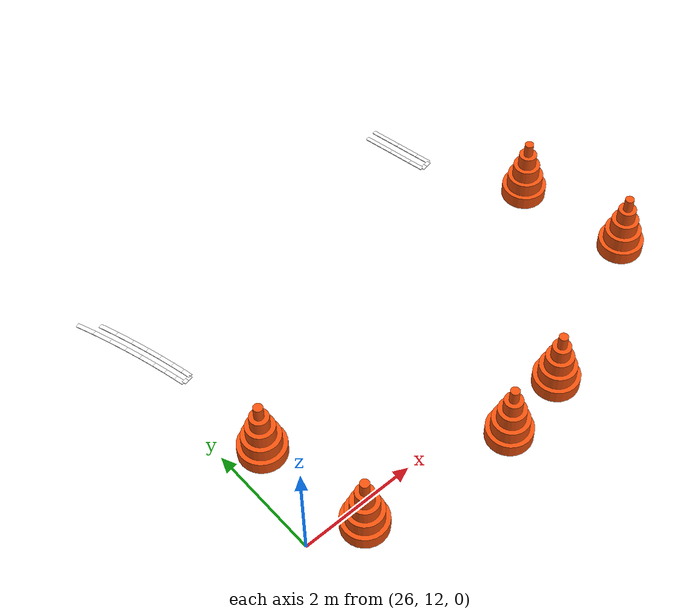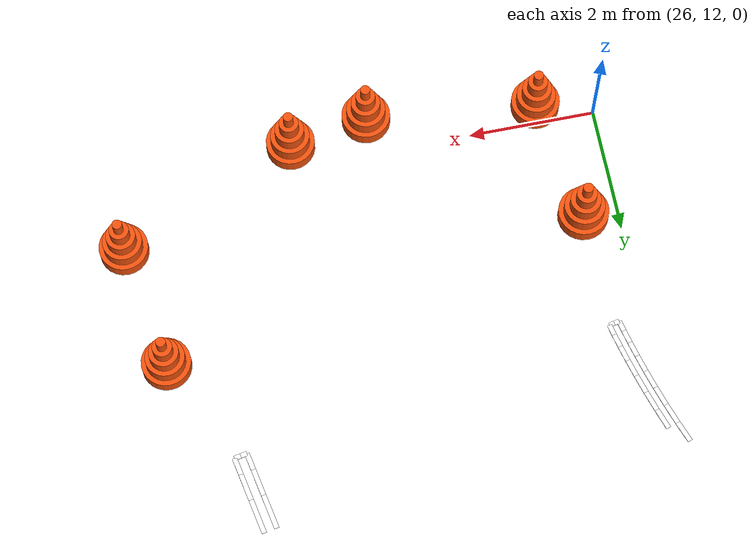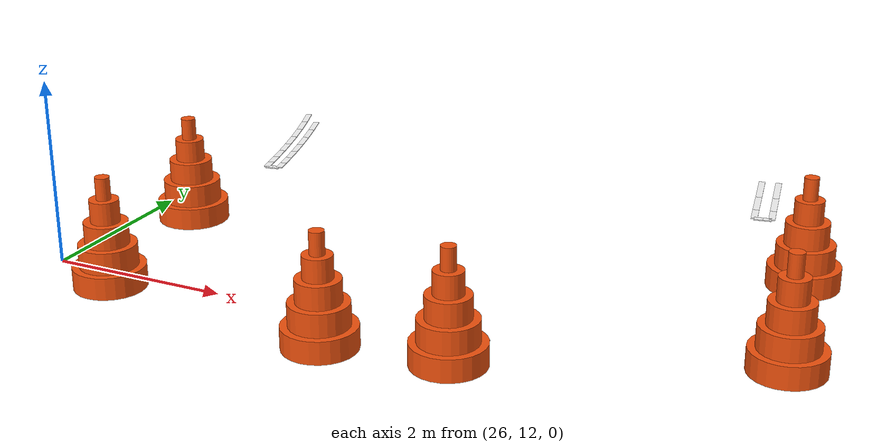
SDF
<sdf version="1.9">
 <world name="igvc_competition">
  <model name="Line_001_0000">
   <static>1</static>
   <pose>32.4409 16.4236 0.011 0 0 0.189157</pose>
   <link name="link">
    <visual name="visual">
     <geometry><box><size>0.1000 0.0762 0.012</size></box></geometry>
     <material>
      <ambient>0.98 0.98 0.98 1</ambient>
      <diffuse>0.98 0.98 0.98 1</diffuse>
      <specular>0.05 0.05 0.05 1</specular>
      <emissive>0.9 0.9 0.9 1</emissive>
     </material>
    </visual>
   </link>
  </model>
  <model name="Line_001_0001">
   <static>1</static>
   <pose>32.3661 16.5486 0.011 0 0 1.759736</pose>
   <link name="link">
    <visual name="visual">
     <geometry><box><size>0.2737 0.0762 0.012</size></box></geometry>
     <material>
      <ambient>0.98 0.98 0.98 1</ambient>
      <diffuse>0.98 0.98 0.98 1</diffuse>
      <specular>0.05 0.05 0.05 1</specular>
      <emissive>0.9 0.9 0.9 1</emissive>
     </material>
    </visual>
   </link>
  </model>
  <model name="Line_001_0002">
   <static>1</static>
   <pose>32.5391 16.4424 0.011 0 0 -2.952435</pose>
   <link name="link">
    <visual name="visual">
     <geometry><box><size>0.1000 0.0762 0.012</size></box></geometry>
     <material>
      <ambient>0.98 0.98 0.98 1</ambient>
      <diffuse>0.98 0.98 0.98 1</diffuse>
      <specular>0.05 0.05 0.05 1</specular>
      <emissive>0.9 0.9 0.9 1</emissive>
     </material>
    </visual>
   </link>
  </model>
  <model name="Line_001_0003">
   <static>1</static>
   <pose>32.5626 16.5859 0.011 0 0 1.759720</pose>
   <link name="link">
    <visual name="visual">
     <geometry><box><size>0.2732 0.0762 0.012</size></box></geometry>
     <material>
      <ambient>0.98 0.98 0.98 1</ambient>
      <diffuse>0.98 0.98 0.98 1</diffuse>
      <specular>0.05 0.05 0.05 1</specular>
      <emissive>0.9 0.9 0.9 1</emissive>
     </material>
    </visual>
   </link>
  </model>
  <model name="Line_001_0004">
   <static>1</static>
   <pose>32.3014 16.8928 0.011 0 0 1.754547</pose>
   <link name="link">
    <visual name="visual">
     <geometry><box><size>0.4269 0.0762 0.012</size></box></geometry>
     <material>
      <ambient>0.98 0.98 0.98 1</ambient>
      <diffuse>0.98 0.98 0.98 1</diffuse>
      <specular>0.05 0.05 0.05 1</specular>
      <emissive>0.9 0.9 0.9 1</emissive>
     </material>
    </visual>
   </link>
  </model>
  <model name="Line_001_0005">
   <static>1</static>
   <pose>32.4980 16.9298 0.011 0 0 1.754445</pose>
   <link name="link">
    <visual name="visual">
     <geometry><box><size>0.4266 0.0762 0.012</size></box></geometry>
     <material>
      <ambient>0.98 0.98 0.98 1</ambient>
      <diffuse>0.98 0.98 0.98 1</diffuse>
      <specular>0.05 0.05 0.05 1</specular>
      <emissive>0.9 0.9 0.9 1</emissive>
     </material>
    </visual>
   </link>
  </model>
  <model name="Line_001_0006">
   <static>1</static>
   <pose>32.2115 17.3725 0.011 0 0 1.757297</pose>
   <link name="link">
    <visual name="visual">
     <geometry><box><size>0.5490 0.0762 0.012</size></box></geometry>
     <material>
      <ambient>0.98 0.98 0.98 1</ambient>
      <diffuse>0.98 0.98 0.98 1</diffuse>
      <specular>0.05 0.05 0.05 1</specular>
      <emissive>0.9 0.9 0.9 1</emissive>
     </material>
    </visual>
   </link>
  </model>
  <model name="Line_001_0007">
   <static>1</static>
   <pose>32.4080 17.4097 0.011 0 0 1.757351</pose>
   <link name="link">
    <visual name="visual">
     <geometry><box><size>0.5499 0.0762 0.012</size></box></geometry>
     <material>
      <ambient>0.98 0.98 0.98 1</ambient>
      <diffuse>0.98 0.98 0.98 1</diffuse>
      <specular>0.05 0.05 0.05 1</specular>
      <emissive>0.9 0.9 0.9 1</emissive>
     </material>
    </visual>
   </link>
  </model>
  <model name="Line_002_0000">
   <static>1</static>
   <pose>26.4316 15.4933 0.011 0 0 0.208442</pose>
   <link name="link">
    <visual name="visual">
     <geometry><box><size>0.0817 0.0762 0.012</size></box></geometry>
     <material>
      <ambient>0.98 0.98 0.98 1</ambient>
      <diffuse>0.98 0.98 0.98 1</diffuse>
      <specular>0.05 0.05 0.05 1</specular>
      <emissive>0.9 0.9 0.9 1</emissive>
     </material>
    </visual>
   </link>
  </model>
  <model name="Line_002_0001">
   <static>1</static>
   <pose>26.3739 15.5672 0.011 0 0 1.783092</pose>
   <link name="link">
    <visual name="visual">
     <geometry><box><size>0.1685 0.0762 0.012</size></box></geometry>
     <material>
      <ambient>0.98 0.98 0.98 1</ambient>
      <diffuse>0.98 0.98 0.98 1</diffuse>
      <specular>0.05 0.05 0.05 1</specular>
      <emissive>0.9 0.9 0.9 1</emissive>
     </material>
    </visual>
   </link>
  </model>
  <model name="Line_002_0002">
   <static>1</static>
   <pose>26.5114 15.5103 0.011 0 0 -2.931953</pose>
   <link name="link">
    <visual name="visual">
     <geometry><box><size>0.0817 0.0762 0.012</size></box></geometry>
     <material>
      <ambient>0.98 0.98 0.98 1</ambient>
      <diffuse>0.98 0.98 0.98 1</diffuse>
      <specular>0.05 0.05 0.05 1</specular>
      <emissive>0.9 0.9 0.9 1</emissive>
     </material>
    </visual>
   </link>
  </model>
  <model name="Line_002_0003">
   <static>1</static>
   <pose>26.5335 15.6019 0.011 0 0 1.783082</pose>
   <link name="link">
    <visual name="visual">
     <geometry><box><size>0.1699 0.0762 0.012</size></box></geometry>
     <material>
      <ambient>0.98 0.98 0.98 1</ambient>
      <diffuse>0.98 0.98 0.98 1</diffuse>
      <specular>0.05 0.05 0.05 1</specular>
      <emissive>0.9 0.9 0.9 1</emissive>
     </material>
    </visual>
   </link>
  </model>
  <model name="Line_002_0004">
   <static>1</static>
   <pose>26.3323 15.7508 0.011 0 0 1.801667</pose>
   <link name="link">
    <visual name="visual">
     <geometry><box><size>0.2080 0.0762 0.012</size></box></geometry>
     <material>
      <ambient>0.98 0.98 0.98 1</ambient>
      <diffuse>0.98 0.98 0.98 1</diffuse>
      <specular>0.05 0.05 0.05 1</specular>
      <emissive>0.9 0.9 0.9 1</emissive>
     </material>
    </visual>
   </link>
  </model>
  <model name="Line_002_0005">
   <static>1</static>
   <pose>26.4915 15.7874 0.011 0 0 1.801615</pose>
   <link name="link">
    <visual name="visual">
     <geometry><box><size>0.2107 0.0762 0.012</size></box></geometry>
     <material>
      <ambient>0.98 0.98 0.98 1</ambient>
      <diffuse>0.98 0.98 0.98 1</diffuse>
      <specular>0.05 0.05 0.05 1</specular>
      <emissive>0.9 0.9 0.9 1</emissive>
     </material>
    </visual>
   </link>
  </model>
  <model name="Line_002_0006">
   <static>1</static>
   <pose>26.2787 15.9697 0.011 0 0 1.818473</pose>
   <link name="link">
    <visual name="visual">
     <geometry><box><size>0.2427 0.0762 0.012</size></box></geometry>
     <material>
      <ambient>0.98 0.98 0.98 1</ambient>
      <diffuse>0.98 0.98 0.98 1</diffuse>
      <specular>0.05 0.05 0.05 1</specular>
      <emissive>0.9 0.9 0.9 1</emissive>
     </material>
    </visual>
   </link>
  </model>
  <model name="Line_002_0007">
   <static>1</static>
   <pose>26.4373 16.0090 0.011 0 0 1.818541</pose>
   <link name="link">
    <visual name="visual">
     <geometry><box><size>0.2455 0.0762 0.012</size></box></geometry>
     <material>
      <ambient>0.98 0.98 0.98 1</ambient>
      <diffuse>0.98 0.98 0.98 1</diffuse>
      <specular>0.05 0.05 0.05 1</specular>
      <emissive>0.9 0.9 0.9 1</emissive>
     </material>
    </visual>
   </link>
  </model>
  <model name="Line_002_0008">
   <static>1</static>
   <pose>26.2132 16.2187 0.011 0 0 1.836984</pose>
   <link name="link">
    <visual name="visual">
     <geometry><box><size>0.2722 0.0762 0.012</size></box></geometry>
     <material>
      <ambient>0.98 0.98 0.98 1</ambient>
      <diffuse>0.98 0.98 0.98 1</diffuse>
      <specular>0.05 0.05 0.05 1</specular>
      <emissive>0.9 0.9 0.9 1</emissive>
     </material>
    </visual>
   </link>
  </model>
  <model name="Line_002_0009">
   <static>1</static>
   <pose>26.3711 16.2606 0.011 0 0 1.836857</pose>
   <link name="link">
    <visual name="visual">
     <geometry><box><size>0.2750 0.0762 0.012</size></box></geometry>
     <material>
      <ambient>0.98 0.98 0.98 1</ambient>
      <diffuse>0.98 0.98 0.98 1</diffuse>
      <specular>0.05 0.05 0.05 1</specular>
      <emissive>0.9 0.9 0.9 1</emissive>
     </material>
    </visual>
   </link>
  </model>
  <model name="Line_002_0010">
   <static>1</static>
   <pose>26.1358 16.4921 0.011 0 0 1.855914</pose>
   <link name="link">
    <visual name="visual">
     <geometry><box><size>0.2962 0.0762 0.012</size></box></geometry>
     <material>
      <ambient>0.98 0.98 0.98 1</ambient>
      <diffuse>0.98 0.98 0.98 1</diffuse>
      <specular>0.05 0.05 0.05 1</specular>
      <emissive>0.9 0.9 0.9 1</emissive>
     </material>
    </visual>
   </link>
  </model>
  <model name="Line_002_0011">
   <static>1</static>
   <pose>26.2927 16.5369 0.011 0 0 1.856301</pose>
   <link name="link">
    <visual name="visual">
     <geometry><box><size>0.2993 0.0762 0.012</size></box></geometry>
     <material>
      <ambient>0.98 0.98 0.98 1</ambient>
      <diffuse>0.98 0.98 0.98 1</diffuse>
      <specular>0.05 0.05 0.05 1</specular>
      <emissive>0.9 0.9 0.9 1</emissive>
     </material>
    </visual>
   </link>
  </model>
  <model name="Line_002_0012">
   <static>1</static>
   <pose>26.0465 16.7843 0.011 0 0 1.877488</pose>
   <link name="link">
    <visual name="visual">
     <geometry><box><size>0.3150 0.0762 0.012</size></box></geometry>
     <material>
      <ambient>0.98 0.98 0.98 1</ambient>
      <diffuse>0.98 0.98 0.98 1</diffuse>
      <specular>0.05 0.05 0.05 1</specular>
      <emissive>0.9 0.9 0.9 1</emissive>
     </material>
    </visual>
   </link>
  </model>
  <model name="Line_002_0013">
   <static>1</static>
   <pose>26.2025 16.8323 0.011 0 0 1.877353</pose>
   <link name="link">
    <visual name="visual">
     <geometry><box><size>0.3184 0.0762 0.012</size></box></geometry>
     <material>
      <ambient>0.98 0.98 0.98 1</ambient>
      <diffuse>0.98 0.98 0.98 1</diffuse>
      <specular>0.05 0.05 0.05 1</specular>
      <emissive>0.9 0.9 0.9 1</emissive>
     </material>
    </visual>
   </link>
  </model>
  <model name="Line_002_0014">
   <static>1</static>
   <pose>25.9457 17.0898 0.011 0 0 1.901308</pose>
   <link name="link">
    <visual name="visual">
     <geometry><box><size>0.3285 0.0762 0.012</size></box></geometry>
     <material>
      <ambient>0.98 0.98 0.98 1</ambient>
      <diffuse>0.98 0.98 0.98 1</diffuse>
      <specular>0.05 0.05 0.05 1</specular>
      <emissive>0.9 0.9 0.9 1</emissive>
     </material>
    </visual>
   </link>
  </model>
  <model name="Line_002_0015">
   <static>1</static>
   <pose>26.1005 17.1414 0.011 0 0 1.901297</pose>
   <link name="link">
    <visual name="visual">
     <geometry><box><size>0.3325 0.0762 0.012</size></box></geometry>
     <material>
      <ambient>0.98 0.98 0.98 1</ambient>
      <diffuse>0.98 0.98 0.98 1</diffuse>
      <specular>0.05 0.05 0.05 1</specular>
      <emissive>0.9 0.9 0.9 1</emissive>
     </material>
    </visual>
   </link>
  </model>
  <model name="Line_002_0016">
   <static>1</static>
   <pose>25.8333 17.4031 0.011 0 0 1.928768</pose>
   <link name="link">
    <visual name="visual">
     <geometry><box><size>0.3371 0.0762 0.012</size></box></geometry>
     <material>
      <ambient>0.98 0.98 0.98 1</ambient>
      <diffuse>0.98 0.98 0.98 1</diffuse>
      <specular>0.05 0.05 0.05 1</specular>
      <emissive>0.9 0.9 0.9 1</emissive>
     </material>
    </visual>
   </link>
  </model>
  <model name="Cones_002">
   <static>1</static>
   <pose>26.5469 13.6793 0 0 0 0</pose>
   <link name="link">
    <collision name="collision">
     <pose>0 0 0.5985 0 0 0</pose>
     <geometry><cylinder><radius>0.3974</radius><length>1.1969</length></cylinder></geometry>
    </collision>
    <visual name="visual_0">
     <pose>0 0 0.1197 0 0 0</pose>
     <geometry><cylinder><radius>0.3974</radius><length>0.2394</length></cylinder></geometry>
     <material>
      <ambient>0.95 0.32 0.05 1.0</ambient>
      <diffuse>0.95 0.32 0.05 1.0</diffuse>
      <specular>0.05 0.05 0.05 1</specular>
     </material>
    </visual>
    <visual name="visual_1">
     <pose>0 0 0.3591 0 0 0</pose>
     <geometry><cylinder><radius>0.3179</radius><length>0.2394</length></cylinder></geometry>
     <material>
      <ambient>0.95 0.32 0.05 1.0</ambient>
      <diffuse>0.95 0.32 0.05 1.0</diffuse>
      <specular>0.05 0.05 0.05 1</specular>
     </material>
    </visual>
    <visual name="visual_2">
     <pose>0 0 0.5985 0 0 0</pose>
     <geometry><cylinder><radius>0.2384</radius><length>0.2394</length></cylinder></geometry>
     <material>
      <ambient>0.95 0.32 0.05 1.0</ambient>
      <diffuse>0.95 0.32 0.05 1.0</diffuse>
      <specular>0.05 0.05 0.05 1</specular>
     </material>
    </visual>
    <visual name="visual_3">
     <pose>0 0 0.8378 0 0 0</pose>
     <geometry><cylinder><radius>0.1590</radius><length>0.2394</length></cylinder></geometry>
     <material>
      <ambient>0.95 0.32 0.05 1.0</ambient>
      <diffuse>0.95 0.32 0.05 1.0</diffuse>
      <specular>0.05 0.05 0.05 1</specular>
     </material>
    </visual>
    <visual name="visual_4">
     <pose>0 0 1.0772 0 0 0</pose>
     <geometry><cylinder><radius>0.0795</radius><length>0.2394</length></cylinder></geometry>
     <material>
      <ambient>0.95 0.32 0.05 1.0</ambient>
      <diffuse>0.95 0.32 0.05 1.0</diffuse>
      <specular>0.05 0.05 0.05 1</specular>
     </material>
    </visual>
   </link>
  </model>
  <model name="Cones_005">
   <static>1</static>
   <pose>26.8753 11.7065 0 0 0 0</pose>
   <link name="link">
    <collision name="collision">
     <pose>0 0 0.5985 0 0 0</pose>
     <geometry><cylinder><radius>0.3831</radius><length>1.1969</length></cylinder></geometry>
    </collision>
    <visual name="visual_0">
     <pose>0 0 0.1197 0 0 0</pose>
     <geometry><cylinder><radius>0.3831</radius><length>0.2394</length></cylinder></geometry>
     <material>
      <ambient>0.95 0.32 0.05 1.0</ambient>
      <diffuse>0.95 0.32 0.05 1.0</diffuse>
      <specular>0.05 0.05 0.05 1</specular>
     </material>
    </visual>
    <visual name="visual_1">
     <pose>0 0 0.3591 0 0 0</pose>
     <geometry><cylinder><radius>0.3065</radius><length>0.2394</length></cylinder></geometry>
     <material>
      <ambient>0.95 0.32 0.05 1.0</ambient>
      <diffuse>0.95 0.32 0.05 1.0</diffuse>
      <specular>0.05 0.05 0.05 1</specular>
     </material>
    </visual>
    <visual name="visual_2">
     <pose>0 0 0.5985 0 0 0</pose>
     <geometry><cylinder><radius>0.2299</radius><length>0.2394</length></cylinder></geometry>
     <material>
      <ambient>0.95 0.32 0.05 1.0</ambient>
      <diffuse>0.95 0.32 0.05 1.0</diffuse>
      <specular>0.05 0.05 0.05 1</specular>
     </material>
    </visual>
    <visual name="visual_3">
     <pose>0 0 0.8378 0 0 0</pose>
     <geometry><cylinder><radius>0.1532</radius><length>0.2394</length></cylinder></geometry>
     <material>
      <ambient>0.95 0.32 0.05 1.0</ambient>
      <diffuse>0.95 0.32 0.05 1.0</diffuse>
      <specular>0.05 0.05 0.05 1</specular>
     </material>
    </visual>
    <visual name="visual_4">
     <pose>0 0 1.0772 0 0 0</pose>
     <geometry><cylinder><radius>0.0766</radius><length>0.2394</length></cylinder></geometry>
     <material>
      <ambient>0.95 0.32 0.05 1.0</ambient>
      <diffuse>0.95 0.32 0.05 1.0</diffuse>
      <specular>0.05 0.05 0.05 1</specular>
     </material>
    </visual>
   </link>
  </model>
  <model name="Cones_011">
   <static>1</static>
   <pose>33.3350 14.8093 0 0 0 0</pose>
   <link name="link">
    <collision name="collision">
     <pose>0 0 0.5985 0 0 0</pose>
     <geometry><cylinder><radius>0.3831</radius><length>1.1969</length></cylinder></geometry>
    </collision>
    <visual name="visual_0">
     <pose>0 0 0.1197 0 0 0</pose>
     <geometry><cylinder><radius>0.3831</radius><length>0.2394</length></cylinder></geometry>
     <material>
      <ambient>0.95 0.32 0.05 1.0</ambient>
      <diffuse>0.95 0.32 0.05 1.0</diffuse>
      <specular>0.05 0.05 0.05 1</specular>
     </material>
    </visual>
    <visual name="visual_1">
     <pose>0 0 0.3591 0 0 0</pose>
     <geometry><cylinder><radius>0.3065</radius><length>0.2394</length></cylinder></geometry>
     <material>
      <ambient>0.95 0.32 0.05 1.0</ambient>
      <diffuse>0.95 0.32 0.05 1.0</diffuse>
      <specular>0.05 0.05 0.05 1</specular>
     </material>
    </visual>
    <visual name="visual_2">
     <pose>0 0 0.5985 0 0 0</pose>
     <geometry><cylinder><radius>0.2299</radius><length>0.2394</length></cylinder></geometry>
     <material>
      <ambient>0.95 0.32 0.05 1.0</ambient>
      <diffuse>0.95 0.32 0.05 1.0</diffuse>
      <specular>0.05 0.05 0.05 1</specular>
     </material>
    </visual>
    <visual name="visual_3">
     <pose>0 0 0.8378 0 0 0</pose>
     <geometry><cylinder><radius>0.1532</radius><length>0.2394</length></cylinder></geometry>
     <material>
      <ambient>0.95 0.32 0.05 1.0</ambient>
      <diffuse>0.95 0.32 0.05 1.0</diffuse>
      <specular>0.05 0.05 0.05 1</specular>
     </material>
    </visual>
    <visual name="visual_4">
     <pose>0 0 1.0772 0 0 0</pose>
     <geometry><cylinder><radius>0.0766</radius><length>0.2394</length></cylinder></geometry>
     <material>
      <ambient>0.95 0.32 0.05 1.0</ambient>
      <diffuse>0.95 0.32 0.05 1.0</diffuse>
      <specular>0.05 0.05 0.05 1</specular>
     </material>
    </visual>
   </link>
  </model>
  <model name="Cones_012">
   <static>1</static>
   <pose>33.6634 12.8365 0 0 0 0</pose>
   <link name="link">
    <collision name="collision">
     <pose>0 0 0.5985 0 0 0</pose>
     <geometry><cylinder><radius>0.3831</radius><length>1.1969</length></cylinder></geometry>
    </collision>
    <visual name="visual_0">
     <pose>0 0 0.1197 0 0 0</pose>
     <geometry><cylinder><radius>0.3831</radius><length>0.2394</length></cylinder></geometry>
     <material>
      <ambient>0.95 0.32 0.05 1.0</ambient>
      <diffuse>0.95 0.32 0.05 1.0</diffuse>
      <specular>0.05 0.05 0.05 1</specular>
     </material>
    </visual>
    <visual name="visual_1">
     <pose>0 0 0.3591 0 0 0</pose>
     <geometry><cylinder><radius>0.3065</radius><length>0.2394</length></cylinder></geometry>
     <material>
      <ambient>0.95 0.32 0.05 1.0</ambient>
      <diffuse>0.95 0.32 0.05 1.0</diffuse>
      <specular>0.05 0.05 0.05 1</specular>
     </material>
    </visual>
    <visual name="visual_2">
     <pose>0 0 0.5985 0 0 0</pose>
     <geometry><cylinder><radius>0.2299</radius><length>0.2394</length></cylinder></geometry>
     <material>
      <ambient>0.95 0.32 0.05 1.0</ambient>
      <diffuse>0.95 0.32 0.05 1.0</diffuse>
      <specular>0.05 0.05 0.05 1</specular>
     </material>
    </visual>
    <visual name="visual_3">
     <pose>0 0 0.8378 0 0 0</pose>
     <geometry><cylinder><radius>0.1532</radius><length>0.2394</length></cylinder></geometry>
     <material>
      <ambient>0.95 0.32 0.05 1.0</ambient>
      <diffuse>0.95 0.32 0.05 1.0</diffuse>
      <specular>0.05 0.05 0.05 1</specular>
     </material>
    </visual>
    <visual name="visual_4">
     <pose>0 0 1.0772 0 0 0</pose>
     <geometry><cylinder><radius>0.0766</radius><length>0.2394</length></cylinder></geometry>
     <material>
      <ambient>0.95 0.32 0.05 1.0</ambient>
      <diffuse>0.95 0.32 0.05 1.0</diffuse>
      <specular>0.05 0.05 0.05 1</specular>
     </material>
    </visual>
   </link>
  </model>
  <model name="Cones_018">
   <static>1</static>
   <pose>30.8034 11.6197 0 0 0 0</pose>
   <link name="link">
    <collision name="collision">
     <pose>0 0 0.5985 0 0 0</pose>
     <geometry><cylinder><radius>0.3831</radius><length>1.1969</length></cylinder></geometry>
    </collision>
    <visual name="visual_0">
     <pose>0 0 0.1197 0 0 0</pose>
     <geometry><cylinder><radius>0.3831</radius><length>0.2394</length></cylinder></geometry>
     <material>
      <ambient>0.95 0.32 0.05 1.0</ambient>
      <diffuse>0.95 0.32 0.05 1.0</diffuse>
      <specular>0.05 0.05 0.05 1</specular>
     </material>
    </visual>
    <visual name="visual_1">
     <pose>0 0 0.3591 0 0 0</pose>
     <geometry><cylinder><radius>0.3065</radius><length>0.2394</length></cylinder></geometry>
     <material>
      <ambient>0.95 0.32 0.05 1.0</ambient>
      <diffuse>0.95 0.32 0.05 1.0</diffuse>
      <specular>0.05 0.05 0.05 1</specular>
     </material>
    </visual>
    <visual name="visual_2">
     <pose>0 0 0.5985 0 0 0</pose>
     <geometry><cylinder><radius>0.2299</radius><length>0.2394</length></cylinder></geometry>
     <material>
      <ambient>0.95 0.32 0.05 1.0</ambient>
      <diffuse>0.95 0.32 0.05 1.0</diffuse>
      <specular>0.05 0.05 0.05 1</specular>
     </material>
    </visual>
    <visual name="visual_3">
     <pose>0 0 0.8378 0 0 0</pose>
     <geometry><cylinder><radius>0.1532</radius><length>0.2394</length></cylinder></geometry>
     <material>
      <ambient>0.95 0.32 0.05 1.0</ambient>
      <diffuse>0.95 0.32 0.05 1.0</diffuse>
      <specular>0.05 0.05 0.05 1</specular>
     </material>
    </visual>
    <visual name="visual_4">
     <pose>0 0 1.0772 0 0 0</pose>
     <geometry><cylinder><radius>0.0766</radius><length>0.2394</length></cylinder></geometry>
     <material>
      <ambient>0.95 0.32 0.05 1.0</ambient>
      <diffuse>0.95 0.32 0.05 1.0</diffuse>
      <specular>0.05 0.05 0.05 1</specular>
     </material>
    </visual>
   </link>
  </model>
  <model name="Cones_025">
   <static>1</static>
   <pose>29.5518 11.4113 0 0 0 0</pose>
   <link name="link">
    <collision name="collision">
     <pose>0 0 0.5985 0 0 0</pose>
     <geometry><cylinder><radius>0.3831</radius><length>1.1969</length></cylinder></geometry>
    </collision>
    <visual name="visual_0">
     <pose>0 0 0.1197 0 0 0</pose>
     <geometry><cylinder><radius>0.3831</radius><length>0.2394</length></cylinder></geometry>
     <material>
      <ambient>0.95 0.32 0.05 1.0</ambient>
      <diffuse>0.95 0.32 0.05 1.0</diffuse>
      <specular>0.05 0.05 0.05 1</specular>
     </material>
    </visual>
    <visual name="visual_1">
     <pose>0 0 0.3591 0 0 0</pose>
     <geometry><cylinder><radius>0.3065</radius><length>0.2394</length></cylinder></geometry>
     <material>
      <ambient>0.95 0.32 0.05 1.0</ambient>
      <diffuse>0.95 0.32 0.05 1.0</diffuse>
      <specular>0.05 0.05 0.05 1</specular>
     </material>
    </visual>
    <visual name="visual_2">
     <pose>0 0 0.5985 0 0 0</pose>
     <geometry><cylinder><radius>0.2299</radius><length>0.2394</length></cylinder></geometry>
     <material>
      <ambient>0.95 0.32 0.05 1.0</ambient>
      <diffuse>0.95 0.32 0.05 1.0</diffuse>
      <specular>0.05 0.05 0.05 1</specular>
     </material>
    </visual>
    <visual name="visual_3">
     <pose>0 0 0.8378 0 0 0</pose>
     <geometry><cylinder><radius>0.1532</radius><length>0.2394</length></cylinder></geometry>
     <material>
      <ambient>0.95 0.32 0.05 1.0</ambient>
      <diffuse>0.95 0.32 0.05 1.0</diffuse>
      <specular>0.05 0.05 0.05 1</specular>
     </material>
    </visual>
    <visual name="visual_4">
     <pose>0 0 1.0772 0 0 0</pose>
     <geometry><cylinder><radius>0.0766</radius><length>0.2394</length></cylinder></geometry>
     <material>
      <ambient>0.95 0.32 0.05 1.0</ambient>
      <diffuse>0.95 0.32 0.05 1.0</diffuse>
      <specular>0.05 0.05 0.05 1</specular>
     </material>
    </visual>
   </link>
  </model>
 </world>
</sdf>
